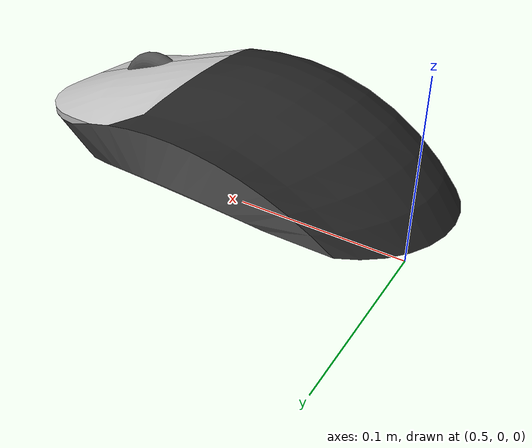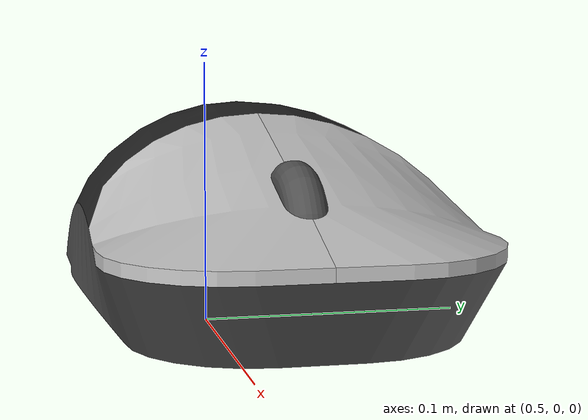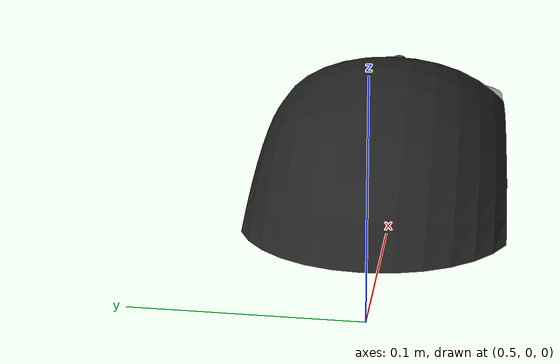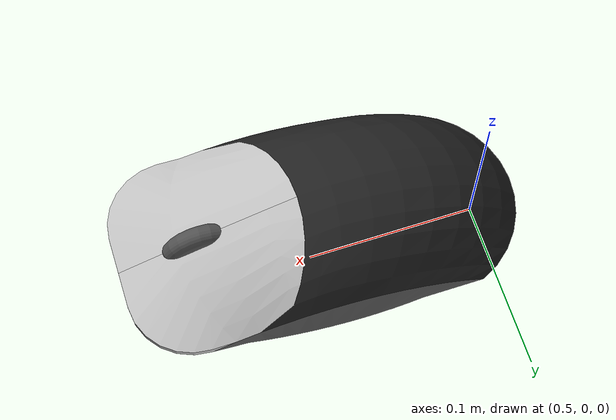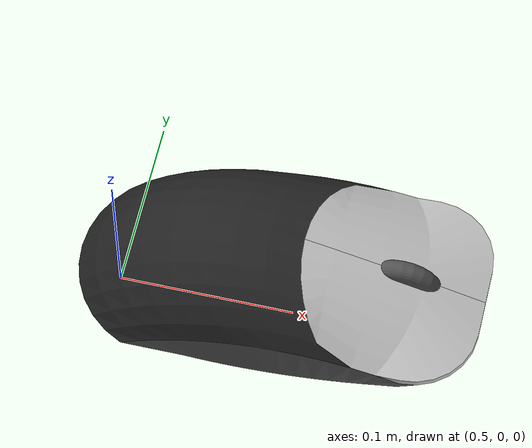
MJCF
<mujoco model="mouse">
<!--  mouse.mjcf:3 中的 meshdir="mouse/textured_objs_thickness" 设置导致了全局路径冲突：-->

<!--  1. arena_allegro_mouse.xml 按顺序include：-->
<!--    - panda_allegro.xml （Franka机械臂mesh）-->
<!--    - mouse.mjcf （设置了meshdir）-->
<!--  2. mouse.mjcf 中的 meshdir 会影响所有mesh的路径解析，包括已定义的panda mesh-->
<!--  3. 当加载 franka_emika_panda/assets/link1.stl 时，会错误拼接成：-->
<!--  mouse/textured_objs_thickness/dexjoco_sim/franka_emika_panda/assets/link1.stl-->
  <default>
   <default class="mouse">
    <mesh scale="0.12 0.12 0.12" />
    <joint limited="true" damping="0.01" armature="0.01" frictionloss="0.01" />
    <motor ctrllimited="true" />
    <equality solref="0.001 2" />
    <default class="mouse/visual">
      <geom condim="1" contype="0" conaffinity="0" group="2" />
    </default>
    <default class="mouse/collision">
      <geom condim="4" contype="1" conaffinity="14" solimp="0.9 0.95 0.001" friction= "0.15 0.01 0.0001" solref="0.01 1" group="3" />

    </default>
   </default>
  </default>
  <asset>
    <material name="original-5_material_0_0" specular="0.06666666666666667" shininess="0.03" rgba="0.3176470588235294 0.3176470588235294 0.3176470588235294 1" />
    <mesh file="mouse/textured_objs_thickness/original-5/original-5.obj" name="original-5" scale="0.12 0.12 0.12" />
    <material name="original-2_material_0_0" specular="0.06666666666666667" shininess="0.03" rgba="0.13333333333333333 0.13333333333333333 0.13333333333333333 1" />
    <mesh file="mouse/textured_objs_thickness/original-2/original-2.obj" name="original-2" scale="0.12 0.12 0.12" />
    <material name="original-1_material_0_0" specular="0.06666666666666667" shininess="0.03" rgba="0.3176470588235294 0.3176470588235294 0.3176470588235294 1" />
    <mesh file="mouse/textured_objs_thickness/original-1/original-1.obj" name="original-1" scale="0.12 0.12 0.12" />
    <material name="original-4_material_0_0" specular="0.06666666666666667" shininess="0.03" rgba="0.7529411764705882 0.7529411764705882 0.7529411764705882 1" />
    <mesh file="mouse/textured_objs_thickness/original-4/original-4.obj" name="original-4" scale="0.12 0.12 0.12" />
    <material name="original-3_material_0_0" specular="0.06666666666666667" shininess="0.03" rgba="0.7529411764705882 0.7529411764705882 0.7529411764705882 1" />
    <mesh file="mouse/textured_objs_thickness/original-3/original-3.obj" name="original-3" scale="0.12 0.12 0.12" />
  </asset>
  <worldbody>
    <body name="link_3" pos="0.6 0.0 0.05" quat="0.5 0.5 0.5 0.5" childclass="mouse">
<!--必须设置，不然固定位置，并且滚轮无法控制-->
    <freejoint name="mouse_root" />
      <geom name="mouse" pos="0.0 0.0 0.0" quat="1 0 0 0" type="mesh" mesh="original-2" material="original-2_material_0_0" density="0" class="mouse/visual" />
      <geom pos="0.0 0.0 0.0" quat="1 0 0 0" type="mesh" mesh="original-1" material="original-1_material_0_0" density="0" class="mouse/visual" />
      <geom pos="0.0 0.0 0.0" quat="1 0 0 0" type="mesh" mesh="original-2" material="original-2_material_0_0" class="mouse/collision" />
      <geom pos="0.0 0.0 0.0" quat="1 0 0 0" type="mesh" mesh="original-1" material="original-1_material_0_0" class="mouse/collision" />
      <body name="link_0" pos="0.01946052337734874 0.0173107458098297 0.05022304669571423">
<!--在鼠标上加“弹簧”：stiffness：弹簧钢度 springref：弹簧参考位置（力为0的点） damping：阻尼系数（回弹速度，值越小，运动越"灵活"，但可能震荡（像弹簧一样反复弹跳））-->
        <joint name="mouse_joint_0" pos="0 0 0" axis="-0.2207561414986594 -0.935076664159537 -0.27730553210294306" range="-0.008 0.008" type="slide" stiffness="1000" springref="0" damping="100" />
        <geom pos="-0.01946052337734874 -0.0173107458098297 -0.05022304669571423" quat="1 0 0 0" type="mesh" mesh="original-3" material="original-3_material_0_0" density="0" class="mouse/visual" />
        <geom pos="-0.01946052337734874 -0.0173107458098297 -0.05022304669571423" quat="1 0 0 0" type="mesh" mesh="original-3" material="original-3_material_0_0" class="mouse/collision" />
      </body>
      <body name="link_1" pos="-0.018636053511937044 0.017034204392511798 0.05214668552679713">
        <joint name="mouse_joint_1" pos="0 0 0" axis="0.2207537368040033 -0.9350768739328008 -0.27730673905105435" range="-0.008 0.008" type="slide" stiffness="1000" springref="0" damping="100" />
        <geom pos="0.018636053511937044 -0.017034204392511798 -0.05214668552679713" quat="1 0 0 0" type="mesh" mesh="original-4" material="original-4_material_0_0" density="0" class="mouse/visual" />
        <geom pos="0.018636053511937044 -0.017034204392511798 -0.05214668552679713" quat="1 0 0 0" type="mesh" mesh="original-4" material="original-4_material_0_0" class="mouse/collision" />
      </body>
      <body name="link_2" pos="0.0 0.005000000000000001 0.050600000000000006">
        <geom pos="0.0 -0.005000000000000001 -0.050600000000000006" quat="1 0 0 0" type="mesh" mesh="original-5" material="original-5_material_0_0" density="0" class="mouse/visual" />
        <geom pos="0.0 -0.005000000000000001 -0.050600000000000006" quat="1 0 0 0" type="mesh" mesh="original-5" material="original-5_material_0_0" class="mouse/collision" />
      </body>
    </body>
  </worldbody>
  <actuator>
  </actuator>
</mujoco>
